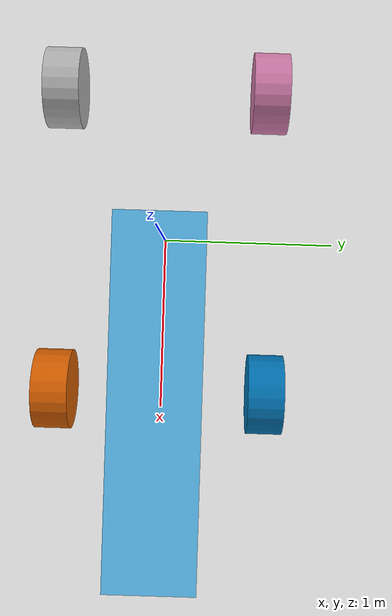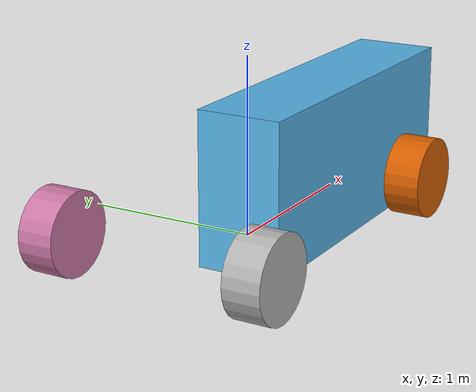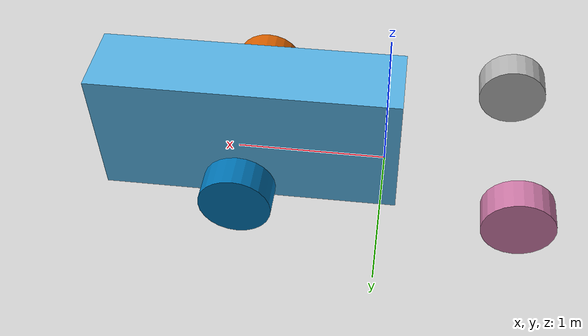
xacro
<?xml version="1.0"?>
<robot xmlns:xacro="http://ros.org/wiki/xacro" name="prius">

  <!--- Surface properties must come first? -->
  <gazebo reference="front_left_wheel">
    <mu1>2.0</mu1>
    <mu2>2.0</mu2>
    <minDepth>0.005</minDepth>
    <kp>1e8</kp>
  </gazebo>
  <gazebo reference="front_right_wheel">
    <mu1>2.0</mu1>
    <mu2>2.0</mu2>
    <minDepth>0.005</minDepth>
    <kp>1e8</kp>
  </gazebo>
  <gazebo reference="rear_left_wheel">
    <mu1>2.0</mu1>
    <mu2>2.0</mu2>
    <minDepth>0.005</minDepth>
    <kp>1e8</kp>
  </gazebo>
  <gazebo reference="rear_right_wheel">
    <mu1>2.0</mu1>
    <mu2>2.0</mu2>
    <minDepth>0.005</minDepth>
    <kp>1e8</kp>
  </gazebo>

  <link name="base_link">
    <inertial>
      <mass value="1"/>
      <inertia ixx="0.001" ixy="0.0" ixz="0.0" iyy="0.001" iyz="0.0" izz="0.001"/>
    </inertial>
  </link>

  <joint name="base_link_connection" type="fixed">
    <parent link="base_link"/>
    <child link="chassis"/>
    <origin xyz="0 0 0" rpy="0 0 0"/>
    <axis xyz="1 0 0"/>
  </joint>

  <link name="chassis">
    <visual>
      <origin xyz="0.9 0.0 0.248" rpy="-1.5707 3.1415 0"/>
        <geometry>
            <box size="2 0.9 0.496"/>
      </geometry>
    </visual>

    <collision name="chassis">
      <origin xyz="0.651 0.0 0.248" rpy="0 0 0"/>
        <geometry>
            <box size="2 0.9 0.496"/>
        </geometry>
    </collision>

    <inertial>
        <mass value="250.0"/>
        <origin xyz="0 0 0.0" rpy="0 0 0"/>
        <inertia ixx="2581.13354740" ixy="0.0" ixz="0.0" iyy="591.30846112" iyz="0.0" izz="2681.95008628"/>
    </inertial>
  </link>

  <link name="fl_axle">
    <inertial>
      <mass value="1"/>
      <origin xyz="0 0 0"/>
      <inertia ixx="0.004" ixy="0.0" ixz="0.0" iyy="0.004" iyz="0.0" izz="0.004"/>
    </inertial>
  </link>
  <link name="fr_axle">
    <inertial>
      <mass value="1"/>
      <origin xyz="0 0 0"/>
      <inertia ixx="0.004" ixy="0.0" ixz="0.0" iyy="0.004" iyz="0.0" izz="0.004"/>
    </inertial>
  </link>
  <link name="front_left_wheel">
    <inertial>
      <mass value="11"/>
      <origin xyz="0 0 0"/>
      <inertia ixx="0.58631238" ixy="0.0" ixz="0.0" iyy="0.33552910" iyz="0.0" izz="0.33552910"/>
    </inertial>
    <collision name="front_left_wheel_collision">
      <geometry>
        <sphere radius="0.2286"/>
      </geometry>
    </collision>
    <visual>
      <origin xyz="0 0 0" rpy="0 -1.5707 0"/>
      <geometry>
        <cylinder length="0.2032" radius="0.2286"/>
      </geometry>
        <transparency>0</transparency>
        <cast_shadows>1</cast_shadows>
    </visual>
  </link>
  <link name="front_right_wheel">
    <inertial>
      <mass value="11"/>
      <origin xyz="0 0 0"/>
      <inertia ixx="0.58631238" ixy="0.0" ixz="0.0" iyy="0.33552910" iyz="0.0" izz="0.33552910"/>
    </inertial>
    <collision name="front_right_wheel_collision">
      <geometry>
        <sphere radius="0.2286"/>
      </geometry>
    </collision>
    <visual>
      <origin xyz="0 0 0" rpy="0 -1.5707 0"/>
      <geometry>
        <cylinder length="0.2032" radius="0.2286"/>
      </geometry>
    </visual>
  </link>
  <link name="rear_left_wheel">
    <inertial>
      <mass value="11"/>
      <origin xyz="0 0 0"/>
      <inertia ixx="0.58631238" ixy="0.0" ixz="0.0" iyy="0.33552910" iyz="0.0" izz="0.33552910"/>
    </inertial>
    <collision name="rear_left_wheel_collision">
      <geometry>
        <sphere radius="0.2286"/>
      </geometry>
    </collision>
    <visual>
      <origin xyz="0 0 0" rpy="0 -1.5707 0"/>
      <geometry>
        <cylinder length="0.2032" radius="0.2286"/>
      </geometry>
    </visual>
  </link>
  <link name="rear_right_wheel">
    <inertial>
      <mass value="11"/>
      <origin xyz="0 0 0"/>
      <inertia ixx="0.58631238" ixy="0.0" ixz="0.0" iyy="0.33552910" iyz="0.0" izz="0.33552910"/>
    </inertial>
    <collision name="rear_right_wheel_collision">
      <geometry>
        <sphere radius="0.2286"/>
      </geometry>
    </collision>
    <visual>
      <origin xyz="0 0 0" rpy="0 -1.5707 0"/>
      <geometry>
        <cylinder length="0.2032" radius="0.2286"/>
      </geometry>
    </visual>
  </link>

  <joint name="front_left_steer_joint" type="continuous">
    <parent link="chassis"/>
    <child link="fl_axle"/>
    <origin xyz="0.889 0.605 0.1886" rpy="0 0 1.57"/>
    <axis xyz="0 0 1"/>
    <limit lower="-0.8727" upper="0.8727" effort="10000000" velocity="1000000"/>
  </joint>
  <joint name="front_right_steer_joint" type="continuous">
    <parent link="chassis"/>
    <child link="fr_axle"/>
    <origin xyz="0.889 -0.605 0.1886" rpy="0 0 1.57"/>
    <axis xyz="0 0 1"/>
    <limit lower="-0.8727" upper="0.8727" effort="10000000" velocity="1000000"/>
  </joint>
  <joint name="front_left_wheel_joint" type="continuous">
    <parent link="fl_axle"/>
    <child link="front_left_wheel"/>
    <origin xyz="0 0 0" rpy="0 0 0"/>
    <axis xyz="1 0 0"/>
  </joint>
  <joint name="front_right_wheel_joint" type="continuous">
    <parent link="fr_axle"/>
    <child link="front_right_wheel"/>
    <origin xyz="0 0 0" rpy="0 0 0"/>
    <axis xyz="1 0 0"/>
  </joint>
  <joint name="rear_left_wheel_joint" type="continuous">
    <parent link="chassis"/>
    <child link="rear_left_wheel"/>
    <origin xyz="-0.851 0.590 0.1886" rpy="0 0 1.57"/>
    <axis xyz="1 0 0"/>
  </joint>
  <joint name="rear_right_wheel_joint" type="continuous">
    <parent link="chassis"/>
    <child link="rear_right_wheel"/>
    <origin xyz="-0.851 -0.590 0.1886" rpy="0 0 1.57"/>
    <axis xyz="1 0 0"/>
  </joint>

  <!-- Sensor links and fixed joints -->
  <link name="center_laser_link">
    <inertial>
      <mass value="1"/>
      <inertia ixx="0.001" ixy="0.0" ixz="0.0" iyy="0.001" iyz="0.0" izz="0.001"/>
    </inertial>
  </link>
  <joint name="center_laser_joint" type="fixed">
    <parent link="chassis"/>
    <child link="center_laser_link"/>
    <origin xyz="1.3 0.0 0.0" rpy="0 0 0"/>
  </joint>

  <gazebo reference="base_link_connection">
    <disableFixedJointLumping>true</disableFixedJointLumping>
  </gazebo>

  <link name="front_camera_link">
    <inertial>
      <mass value="1"/>
      <inertia ixx="0.001" ixy="0.0" ixz="0.0" iyy="0.001" iyz="0.0" izz="0.001"/>
    </inertial>
  </link>
  <joint name="front_camera_joint" type="fixed">
    <parent link="chassis"/>
    <child link="front_camera_link"/>
    <origin xyz="0 0 1.1" rpy="0 0.17 0"/>
  </joint>

  <gazebo>
    <plugin name="pruis_hybrid_drive" filename="libPriusHybridPlugin.so">
      <chassis>chassis</chassis>
      <front_left_wheel>front_left_wheel_joint</front_left_wheel>
      <front_right_wheel>front_right_wheel_joint</front_right_wheel>
      <front_left_wheel_steering>front_left_steer_joint</front_left_wheel_steering>
      <front_right_wheel_steering>front_right_steer_joint</front_right_wheel_steering>
      <back_left_wheel>rear_left_wheel_joint</back_left_wheel>
      <back_right_wheel>rear_right_wheel_joint</back_right_wheel>
      <front_torque>0</front_torque>
      <back_torque>140</back_torque>
      <front_brake_torque>1031.28052716</front_brake_torque>
      <back_brake_torque>687.5203514400001</back_brake_torque>
      <max_speed>20</max_speed>
      <max_steer>0.44</max_steer>
      <flwheel_steering_p_gain>1e4</flwheel_steering_p_gain>
      <frwheel_steering_p_gain>1e4</frwheel_steering_p_gain>
      <flwheel_steering_i_gain>0</flwheel_steering_i_gain>
      <frwheel_steering_i_gain>0</frwheel_steering_i_gain>
      <flwheel_steering_d_gain>3e2</flwheel_steering_d_gain>
      <frwheel_steering_d_gain>3e2</frwheel_steering_d_gain>
      <flwheel_p_gain>0</flwheel_p_gain>
      <frwheel_p_gain>0</frwheel_p_gain>
      <flwheel_i_gain>0</flwheel_i_gain>
      <frwheel_i_gain>0</frwheel_i_gain>
      <flwheel_d_gain>0</flwheel_d_gain>
      <frwheel_d_gain>0</frwheel_d_gain>
      <blwheel_p_gain>300</blwheel_p_gain>
      <brwheel_p_gain>300</brwheel_p_gain>
      <blwheel_i_gain>0.001</blwheel_i_gain>
      <brwheel_i_gain>0.001</brwheel_i_gain>
      <blwheel_d_gain>0</blwheel_d_gain>
      <brwheel_d_gain>0</brwheel_d_gain>
    </plugin>
  </gazebo>

  <gazebo>
    <plugin name="joint_state_publisher" filename="libgazebo_ros_joint_state_publisher.so">
      <jointName>rear_right_wheel_joint, rear_left_wheel_joint, front_right_wheel_joint, front_left_wheel_joint, front_right_steer_joint, front_left_steer_joint</jointName>
      <updateRate>100.0</updateRate>
      <alwaysOn>true</alwaysOn>
    </plugin>
  </gazebo>

  <gazebo>
    <plugin name="p3d" filename="libgazebo_ros_p3d.so">
      <bodyName>chassis</bodyName>
      <topicName>base_pose_ground_truth</topicName>
      <frameName>map</frameName>
      <updateRate>100.0</updateRate>
    </plugin>
  </gazebo>

 <gazebo reference="center_laser_link">
    <sensor name='center_laser_sensor' type='ray'>
      <ray>
         <scan>
	        <pose>0 0 0 0 0 0</pose>
            <vertical>
              <samples>32</samples>
              <resolution>1</resolution>
              <min_angle>-0.5352</min_angle>
              <max_angle>0.1862</max_angle>
            </vertical>
            <horizontal>
              <samples>500</samples>
              <resolution>1</resolution>
              <min_angle>-3.1415</min_angle>
              <max_angle>3.1415</max_angle>
            </horizontal>
          </scan>
          <range>
            <min>0.9</min>
            <max>131</max>
            <resolution>0.001</resolution>
          </range>
          <noise>
            <type>gaussian</type>
            <mean>0.0</mean>
            <stddev>0</stddev>
          </noise>
      </ray>
      <plugin name="gazebo_ros_laser_controller" filename="libgazebo_ros_velodyne_laser.so">
          <topicName>/velodyne_points</topicName>
          <frameName>center_laser_link</frameName>
          <min_range>0.9</min_range>
          <max_range>130</max_range>
          <gaussianNoise>0</gaussianNoise>
        </plugin>
      <always_on>1</always_on>
      <update_rate>10</update_rate>
      <visualize>0</visualize>
    </sensor>
   </gazebo>

  <gazebo reference="front_camera_link">
    <sensor type="camera" name="front_camera_sensor">
      <update_rate>30.0</update_rate>
      <camera name="front_camera">
        <horizontal_fov>1.3962634</horizontal_fov>
        <image>
          <width>800</width>
          <height>800</height>
          <format>R8G8B8</format>
        </image>
        <clip>
          <near>0.02</near>
          <far>300</far>
        </clip>
        <noise>
          <type>gaussian</type>
          <mean>0.0</mean>
          <stddev>0.007</stddev>
        </noise>
      </camera>
      <plugin name="front_camera_controller" filename="libgazebo_ros_camera.so">
        <alwaysOn>false</alwaysOn>
        <updateRate>0.0</updateRate>
        <cameraName>/E02/front_camera</cameraName>
        <imageTopicName>image_raw</imageTopicName>
        <cameraInfoTopicName>/E02/front_camera_info</cameraInfoTopicName>
        <frameName>camera_link</frameName>
        <hackBaseline>0.07</hackBaseline>
        <distortionK1>0.0</distortionK1>
        <distortionK2>0.0</distortionK2>
        <distortionK3>0.0</distortionK3>
        <distortionT1>0.0</distortionT1>
        <distortionT2>0.0</distortionT2>
      </plugin>
    </sensor>
  </gazebo>

</robot>
